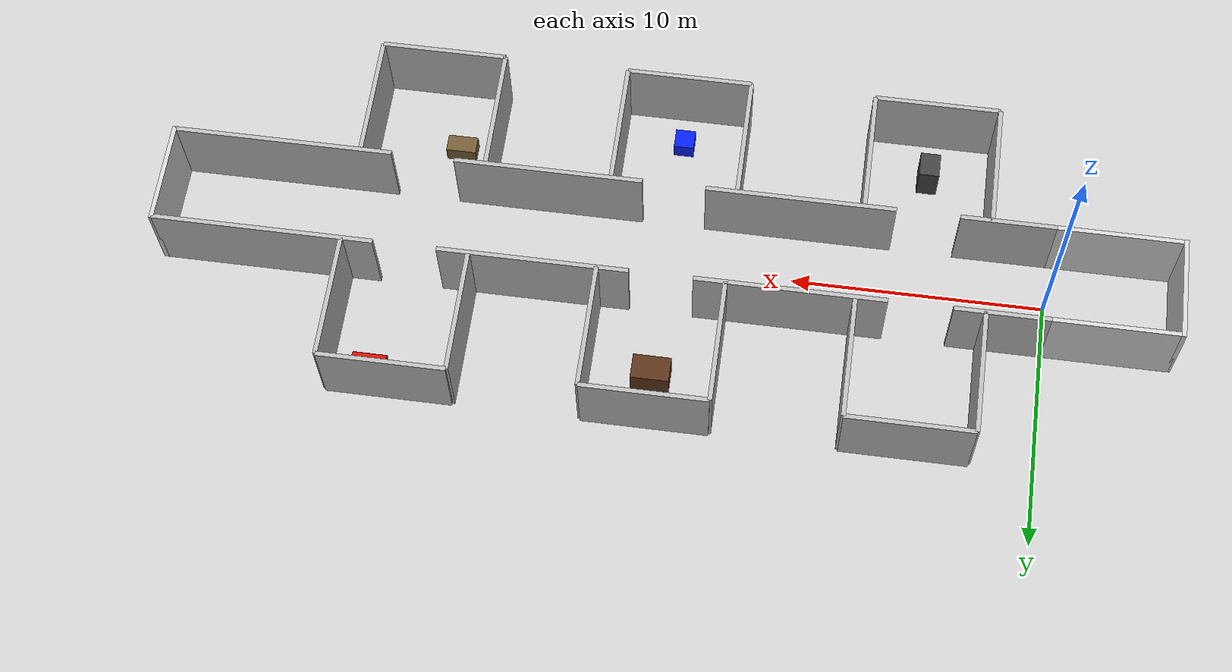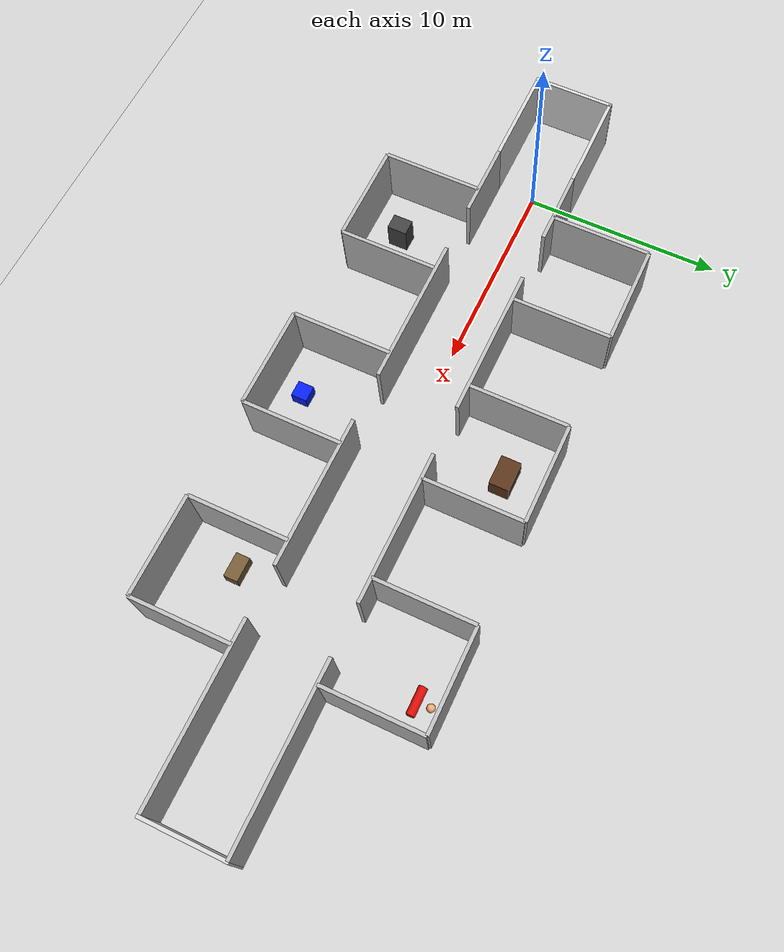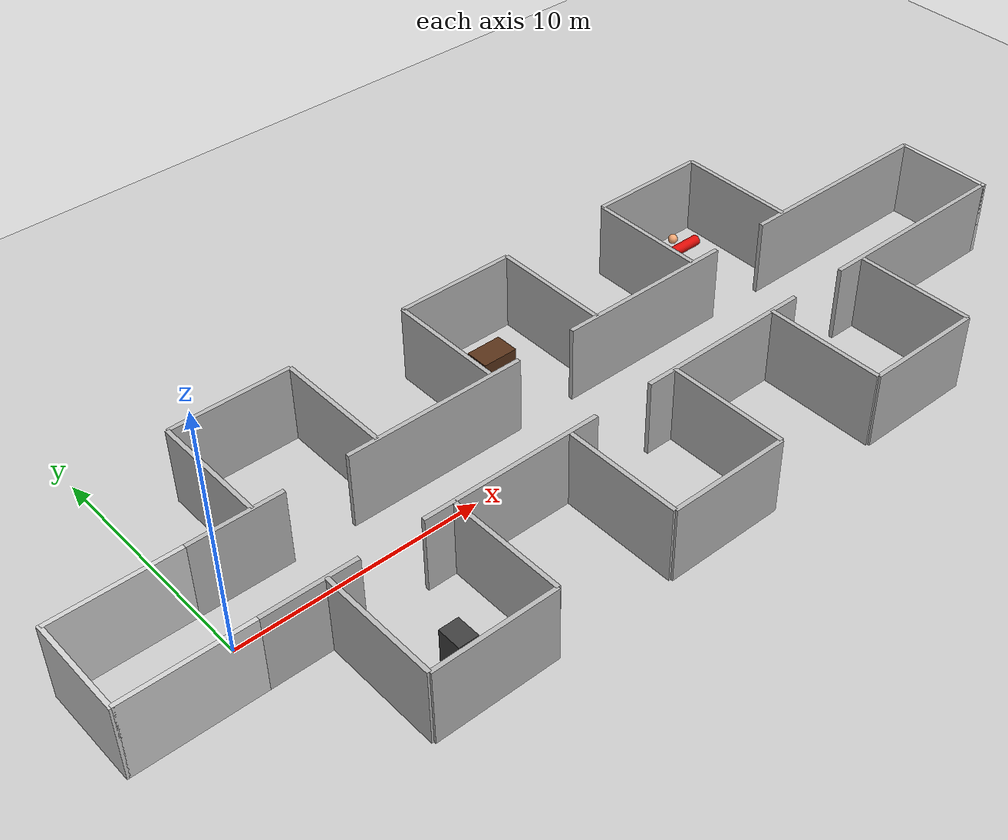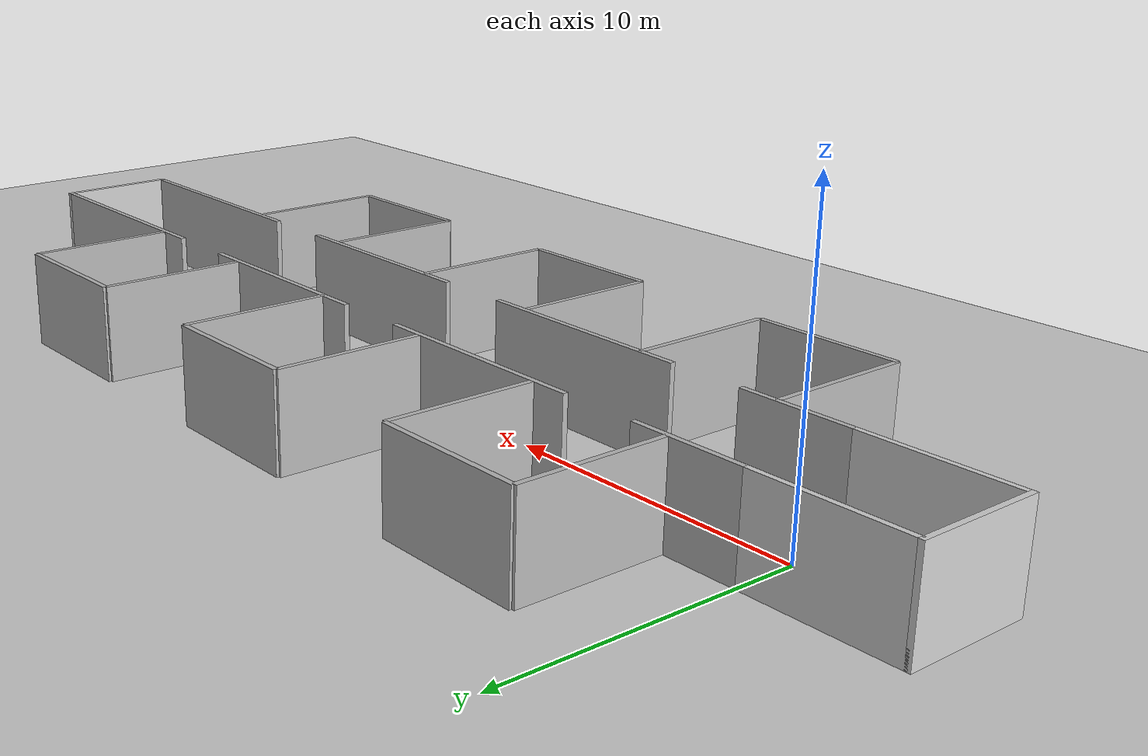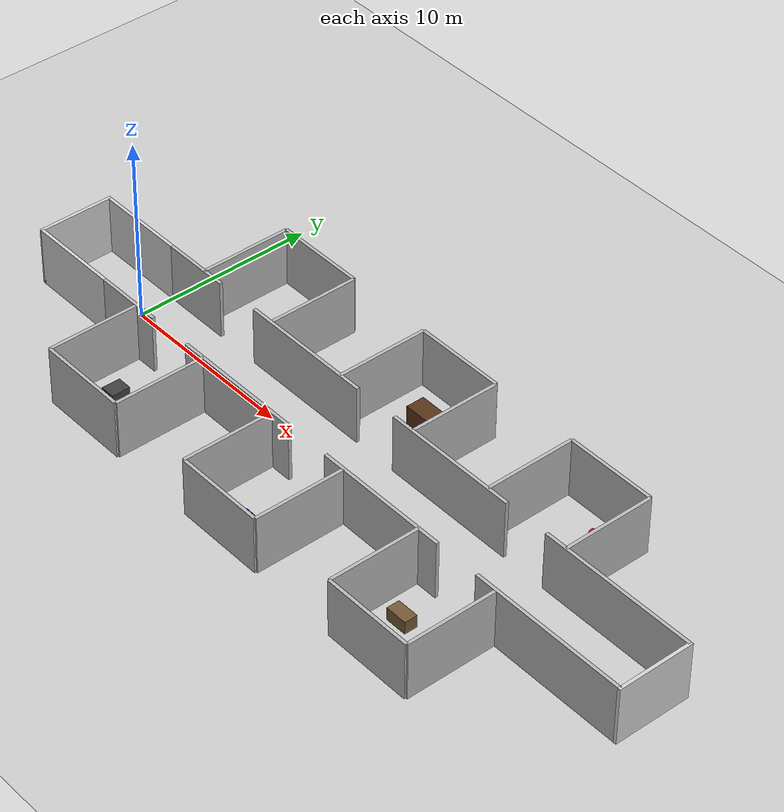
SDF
<?xml version='1.0' encoding='utf-8'?>
<sdf version="1.6">
  <world name="corridor_rooms">
    <gravity>0 0 -9.81</gravity>
    <physics type="ode">
      <max_step_size>.004</max_step_size>
      <real_time_factor>1.0</real_time_factor>
      <real_time_update_rate>250</real_time_update_rate>
    </physics>
    <scene>
      <ambient>.45 .45 .45 1</ambient>
      <background>.70 .78 .88 1</background>
      <shadows>true</shadows>
    </scene>
    <include>
      <uri>model://sun</uri>
    </include>
    <include>
      <uri>model://ground_plane</uri>
    </include>
    <model name="north_entry">
      <static>true</static>
      <pose>-2.5 2 1.6 0 0 0</pose>
      <link name="l">
        <collision name="c">
          <geometry>
            <box>
              <size>5 0.18 3.2</size>
            </box>
          </geometry>
        </collision>
        <visual name="v">
          <geometry>
            <box>
              <size>5 0.18 3.2</size>
            </box>
          </geometry>
          <material>
            <ambient>0.82 0.82 0.82 1</ambient>
            <diffuse>0.82 0.82 0.82 1</diffuse>
          </material>
        </visual>
      </link>
    </model>
    <model name="south_entry">
      <static>true</static>
      <pose>-2.5 -2 1.6 0 0 0</pose>
      <link name="l">
        <collision name="c">
          <geometry>
            <box>
              <size>5 0.18 3.2</size>
            </box>
          </geometry>
        </collision>
        <visual name="v">
          <geometry>
            <box>
              <size>5 0.18 3.2</size>
            </box>
          </geometry>
          <material>
            <ambient>0.82 0.82 0.82 1</ambient>
            <diffuse>0.82 0.82 0.82 1</diffuse>
          </material>
        </visual>
      </link>
    </model>
    <model name="north_wall_0">
      <static>true</static>
      <pose>1.875 2 1.6 0 0 0</pose>
      <link name="l">
        <collision name="c">
          <geometry>
            <box>
              <size>3.75 0.18 3.2</size>
            </box>
          </geometry>
        </collision>
        <visual name="v">
          <geometry>
            <box>
              <size>3.75 0.18 3.2</size>
            </box>
          </geometry>
        </visual>
      </link>
    </model>
    <model name="north_wall_1">
      <static>true</static>
      <pose>10.0 2 1.6 0 0 0</pose>
      <link name="l">
        <collision name="c">
          <geometry>
            <box>
              <size>7.5 0.18 3.2</size>
            </box>
          </geometry>
        </collision>
        <visual name="v">
          <geometry>
            <box>
              <size>7.5 0.18 3.2</size>
            </box>
          </geometry>
        </visual>
      </link>
    </model>
    <model name="north_wall_2">
      <static>true</static>
      <pose>20.0 2 1.6 0 0 0</pose>
      <link name="l">
        <collision name="c">
          <geometry>
            <box>
              <size>7.5 0.18 3.2</size>
            </box>
          </geometry>
        </collision>
        <visual name="v">
          <geometry>
            <box>
              <size>7.5 0.18 3.2</size>
            </box>
          </geometry>
        </visual>
      </link>
    </model>
    <model name="north_wall_3">
      <static>true</static>
      <pose>30.625 2 1.6 0 0 0</pose>
      <link name="l">
        <collision name="c">
          <geometry>
            <box>
              <size>8.75 0.18 3.2</size>
            </box>
          </geometry>
        </collision>
        <visual name="v">
          <geometry>
            <box>
              <size>8.75 0.18 3.2</size>
            </box>
          </geometry>
        </visual>
      </link>
    </model>
    <model name="south_wall_0">
      <static>true</static>
      <pose>1.875 -2 1.6 0 0 0</pose>
      <link name="l">
        <collision name="c">
          <geometry>
            <box>
              <size>3.75 0.18 3.2</size>
            </box>
          </geometry>
        </collision>
        <visual name="v">
          <geometry>
            <box>
              <size>3.75 0.18 3.2</size>
            </box>
          </geometry>
        </visual>
      </link>
    </model>
    <model name="south_wall_1">
      <static>true</static>
      <pose>10.0 -2 1.6 0 0 0</pose>
      <link name="l">
        <collision name="c">
          <geometry>
            <box>
              <size>7.5 0.18 3.2</size>
            </box>
          </geometry>
        </collision>
        <visual name="v">
          <geometry>
            <box>
              <size>7.5 0.18 3.2</size>
            </box>
          </geometry>
        </visual>
      </link>
    </model>
    <model name="south_wall_2">
      <static>true</static>
      <pose>20.0 -2 1.6 0 0 0</pose>
      <link name="l">
        <collision name="c">
          <geometry>
            <box>
              <size>7.5 0.18 3.2</size>
            </box>
          </geometry>
        </collision>
        <visual name="v">
          <geometry>
            <box>
              <size>7.5 0.18 3.2</size>
            </box>
          </geometry>
        </visual>
      </link>
    </model>
    <model name="south_wall_3">
      <static>true</static>
      <pose>30.625 -2 1.6 0 0 0</pose>
      <link name="l">
        <collision name="c">
          <geometry>
            <box>
              <size>8.75 0.18 3.2</size>
            </box>
          </geometry>
        </collision>
        <visual name="v">
          <geometry>
            <box>
              <size>8.75 0.18 3.2</size>
            </box>
          </geometry>
        </visual>
      </link>
    </model>
    <model name="north_room0_outer">
      <static>true</static>
      <pose>5 7 1.6 0 0 0</pose>
      <link name="l">
        <collision name="c">
          <geometry>
            <box>
              <size>5 0.18 3.2</size>
            </box>
          </geometry>
        </collision>
        <visual name="v">
          <geometry>
            <box>
              <size>5 0.18 3.2</size>
            </box>
          </geometry>
        </visual>
      </link>
    </model>
    <model name="north_room0_left">
      <static>true</static>
      <pose>2.5 4.5 1.6 0 0 0</pose>
      <link name="l">
        <collision name="c">
          <geometry>
            <box>
              <size>0.18 5 3.2</size>
            </box>
          </geometry>
        </collision>
        <visual name="v">
          <geometry>
            <box>
              <size>0.18 5 3.2</size>
            </box>
          </geometry>
        </visual>
      </link>
    </model>
    <model name="north_room0_right">
      <static>true</static>
      <pose>7.5 4.5 1.6 0 0 0</pose>
      <link name="l">
        <collision name="c">
          <geometry>
            <box>
              <size>0.18 5 3.2</size>
            </box>
          </geometry>
        </collision>
        <visual name="v">
          <geometry>
            <box>
              <size>0.18 5 3.2</size>
            </box>
          </geometry>
        </visual>
      </link>
    </model>
    <model name="north_room1_outer">
      <static>true</static>
      <pose>15 7 1.6 0 0 0</pose>
      <link name="l">
        <collision name="c">
          <geometry>
            <box>
              <size>5 0.18 3.2</size>
            </box>
          </geometry>
        </collision>
        <visual name="v">
          <geometry>
            <box>
              <size>5 0.18 3.2</size>
            </box>
          </geometry>
        </visual>
      </link>
    </model>
    <model name="north_room1_left">
      <static>true</static>
      <pose>12.5 4.5 1.6 0 0 0</pose>
      <link name="l">
        <collision name="c">
          <geometry>
            <box>
              <size>0.18 5 3.2</size>
            </box>
          </geometry>
        </collision>
        <visual name="v">
          <geometry>
            <box>
              <size>0.18 5 3.2</size>
            </box>
          </geometry>
        </visual>
      </link>
    </model>
    <model name="north_room1_right">
      <static>true</static>
      <pose>17.5 4.5 1.6 0 0 0</pose>
      <link name="l">
        <collision name="c">
          <geometry>
            <box>
              <size>0.18 5 3.2</size>
            </box>
          </geometry>
        </collision>
        <visual name="v">
          <geometry>
            <box>
              <size>0.18 5 3.2</size>
            </box>
          </geometry>
        </visual>
      </link>
    </model>
    <model name="north_room2_outer">
      <static>true</static>
      <pose>25 7 1.6 0 0 0</pose>
      <link name="l">
        <collision name="c">
          <geometry>
            <box>
              <size>5 0.18 3.2</size>
            </box>
          </geometry>
        </collision>
        <visual name="v">
          <geometry>
            <box>
              <size>5 0.18 3.2</size>
            </box>
          </geometry>
        </visual>
      </link>
    </model>
    <model name="north_room2_left">
      <static>true</static>
      <pose>22.5 4.5 1.6 0 0 0</pose>
      <link name="l">
        <collision name="c">
          <geometry>
            <box>
              <size>0.18 5 3.2</size>
            </box>
          </geometry>
        </collision>
        <visual name="v">
          <geometry>
            <box>
              <size>0.18 5 3.2</size>
            </box>
          </geometry>
        </visual>
      </link>
    </model>
    <model name="north_room2_right">
      <static>true</static>
      <pose>27.5 4.5 1.6 0 0 0</pose>
      <link name="l">
        <collision name="c">
          <geometry>
            <box>
              <size>0.18 5 3.2</size>
            </box>
          </geometry>
        </collision>
        <visual name="v">
          <geometry>
            <box>
              <size>0.18 5 3.2</size>
            </box>
          </geometry>
        </visual>
      </link>
    </model>
    <model name="south_room0_outer">
      <static>true</static>
      <pose>5 -7 1.6 0 0 0</pose>
      <link name="l">
        <collision name="c">
          <geometry>
            <box>
              <size>5 0.18 3.2</size>
            </box>
          </geometry>
        </collision>
        <visual name="v">
          <geometry>
            <box>
              <size>5 0.18 3.2</size>
            </box>
          </geometry>
        </visual>
      </link>
    </model>
    <model name="south_room0_left">
      <static>true</static>
      <pose>2.5 -4.5 1.6 0 0 0</pose>
      <link name="l">
        <collision name="c">
          <geometry>
            <box>
              <size>0.18 5 3.2</size>
            </box>
          </geometry>
        </collision>
        <visual name="v">
          <geometry>
            <box>
              <size>0.18 5 3.2</size>
            </box>
          </geometry>
        </visual>
      </link>
    </model>
    <model name="south_room0_right">
      <static>true</static>
      <pose>7.5 -4.5 1.6 0 0 0</pose>
      <link name="l">
        <collision name="c">
          <geometry>
            <box>
              <size>0.18 5 3.2</size>
            </box>
          </geometry>
        </collision>
        <visual name="v">
          <geometry>
            <box>
              <size>0.18 5 3.2</size>
            </box>
          </geometry>
        </visual>
      </link>
    </model>
    <model name="south_room1_outer">
      <static>true</static>
      <pose>15 -7 1.6 0 0 0</pose>
      <link name="l">
        <collision name="c">
          <geometry>
            <box>
              <size>5 0.18 3.2</size>
            </box>
          </geometry>
        </collision>
        <visual name="v">
          <geometry>
            <box>
              <size>5 0.18 3.2</size>
            </box>
          </geometry>
        </visual>
      </link>
    </model>
    <model name="south_room1_left">
      <static>true</static>
      <pose>12.5 -4.5 1.6 0 0 0</pose>
      <link name="l">
        <collision name="c">
          <geometry>
            <box>
              <size>0.18 5 3.2</size>
            </box>
          </geometry>
        </collision>
        <visual name="v">
          <geometry>
            <box>
              <size>0.18 5 3.2</size>
            </box>
          </geometry>
        </visual>
      </link>
    </model>
    <model name="south_room1_right">
      <static>true</static>
      <pose>17.5 -4.5 1.6 0 0 0</pose>
      <link name="l">
        <collision name="c">
          <geometry>
            <box>
              <size>0.18 5 3.2</size>
            </box>
          </geometry>
        </collision>
        <visual name="v">
          <geometry>
            <box>
              <size>0.18 5 3.2</size>
            </box>
          </geometry>
        </visual>
      </link>
    </model>
    <model name="south_room2_outer">
      <static>true</static>
      <pose>25 -7 1.6 0 0 0</pose>
      <link name="l">
        <collision name="c">
          <geometry>
            <box>
              <size>5 0.18 3.2</size>
            </box>
          </geometry>
        </collision>
        <visual name="v">
          <geometry>
            <box>
              <size>5 0.18 3.2</size>
            </box>
          </geometry>
        </visual>
      </link>
    </model>
    <model name="south_room2_left">
      <static>true</static>
      <pose>22.5 -4.5 1.6 0 0 0</pose>
      <link name="l">
        <collision name="c">
          <geometry>
            <box>
              <size>0.18 5 3.2</size>
            </box>
          </geometry>
        </collision>
        <visual name="v">
          <geometry>
            <box>
              <size>0.18 5 3.2</size>
            </box>
          </geometry>
        </visual>
      </link>
    </model>
    <model name="south_room2_right">
      <static>true</static>
      <pose>27.5 -4.5 1.6 0 0 0</pose>
      <link name="l">
        <collision name="c">
          <geometry>
            <box>
              <size>0.18 5 3.2</size>
            </box>
          </geometry>
        </collision>
        <visual name="v">
          <geometry>
            <box>
              <size>0.18 5 3.2</size>
            </box>
          </geometry>
        </visual>
      </link>
    </model>
    <model name="table_north_2">
      <static>true</static>
      <pose>15 5 0.55 0 0 0</pose>
      <link name="l">
        <collision name="c">
          <geometry>
            <box>
              <size>1.5 1.0 1.1</size>
            </box>
          </geometry>
        </collision>
        <visual name="v">
          <geometry>
            <box>
              <size>1.5 1.0 1.1</size>
            </box>
          </geometry>
          <material>
            <ambient>0.35 0.20 0.10 1</ambient>
            <diffuse>0.35 0.20 0.10 1</diffuse>
          </material>
        </visual>
      </link>
    </model>
    <model name="cabinet_south_1">
      <static>true</static>
      <pose>5 -5.2 0.75 0 0 0</pose>
      <link name="l">
        <collision name="c">
          <geometry>
            <box>
              <size>0.8 1.0 1.5</size>
            </box>
          </geometry>
        </collision>
        <visual name="v">
          <geometry>
            <box>
              <size>0.8 1.0 1.5</size>
            </box>
          </geometry>
          <material>
            <ambient>0.25 0.25 0.25 1</ambient>
            <diffuse>0.25 0.25 0.25 1</diffuse>
          </material>
        </visual>
      </link>
    </model>
    <model name="debris_south_3">
      <static>true</static>
      <pose>24 -4.2 0.35 0 0 0</pose>
      <link name="l">
        <collision name="c">
          <geometry>
            <box>
              <size>1.2 0.7 0.7</size>
            </box>
          </geometry>
        </collision>
        <visual name="v">
          <geometry>
            <box>
              <size>1.2 0.7 0.7</size>
            </box>
          </geometry>
          <material>
            <ambient>0.45 0.35 0.20 1</ambient>
            <diffuse>0.45 0.35 0.20 1</diffuse>
          </material>
        </visual>
      </link>
    </model>
    <model name="victim_surrogate">
      <static>true</static>
      <pose>26 5.7 .35 0 1.5708 0</pose>
      <link name="body">
        <collision name="c">
          <geometry>
            <cylinder>
              <radius>.22</radius>
              <length>1.35</length>
            </cylinder>
          </geometry>
        </collision>
        <visual name="v">
          <geometry>
            <cylinder>
              <radius>.22</radius>
              <length>1.35</length>
            </cylinder>
          </geometry>
          <material>
            <ambient>.85 .05 .03 1</ambient>
            <diffuse>.85 .05 .03 1</diffuse>
          </material>
        </visual>
      </link>
    </model>
    <model name="victim_head">
      <static>true</static>
      <pose>26 6.38 .35 0 0 0</pose>
      <link name="h">
        <collision name="c">
          <geometry>
            <sphere>
              <radius>.20</radius>
            </sphere>
          </geometry>
        </collision>
        <visual name="v">
          <geometry>
            <sphere>
              <radius>.20</radius>
            </sphere>
          </geometry>
          <material>
            <ambient>.95 .65 .45 1</ambient>
          </material>
        </visual>
      </link>
    </model>
    <model name="west_corridor_end_wall">
      <static>true</static>
      <pose>-5.0 0 1.6 0 0 0</pose>
      <link name="l">
        <collision name="c">
          <geometry>
            <box>
              <size>0.18 4.18 3.2</size>
            </box>
          </geometry>
        </collision>
        <visual name="v">
          <geometry>
            <box>
              <size>0.18 4.18 3.2</size>
            </box>
          </geometry>
          <material>
            <ambient>0.82 0.82 0.82 1</ambient>
            <diffuse>0.82 0.82 0.82 1</diffuse>
          </material>
        </visual>
      </link>
    </model>
    <model name="east_corridor_end_wall">
      <static>true</static>
      <pose>35.0 0 1.6 0 0 0</pose>
      <link name="l">
        <collision name="c">
          <geometry>
            <box>
              <size>0.18 4.18 3.2</size>
            </box>
          </geometry>
        </collision>
        <visual name="v">
          <geometry>
            <box>
              <size>0.18 4.18 3.2</size>
            </box>
          </geometry>
          <material>
            <ambient>0.82 0.82 0.82 1</ambient>
            <diffuse>0.82 0.82 0.82 1</diffuse>
          </material>
        </visual>
      </link>

    </model>
        <model name="blue_target_box">
      <static>true</static>
      <pose>15 -5.6 0.35 0 0 0</pose>
      <link name="l">
        <collision name="c">
          <geometry>
            <box>
              <size>0.8 0.8 0.7</size>
            </box>
          </geometry>
        </collision>
        <visual name="v">
          <geometry>
            <box>
              <size>0.8 0.8 0.7</size>
            </box>
          </geometry>
          <material>
            <ambient>0.02 0.12 0.95 1</ambient>
            <diffuse>0.02 0.12 0.95 1</diffuse>
            <specular>0.05 0.05 0.20 1</specular>
          </material>
        </visual>
      </link>
    </model>

  </world>
</sdf>
